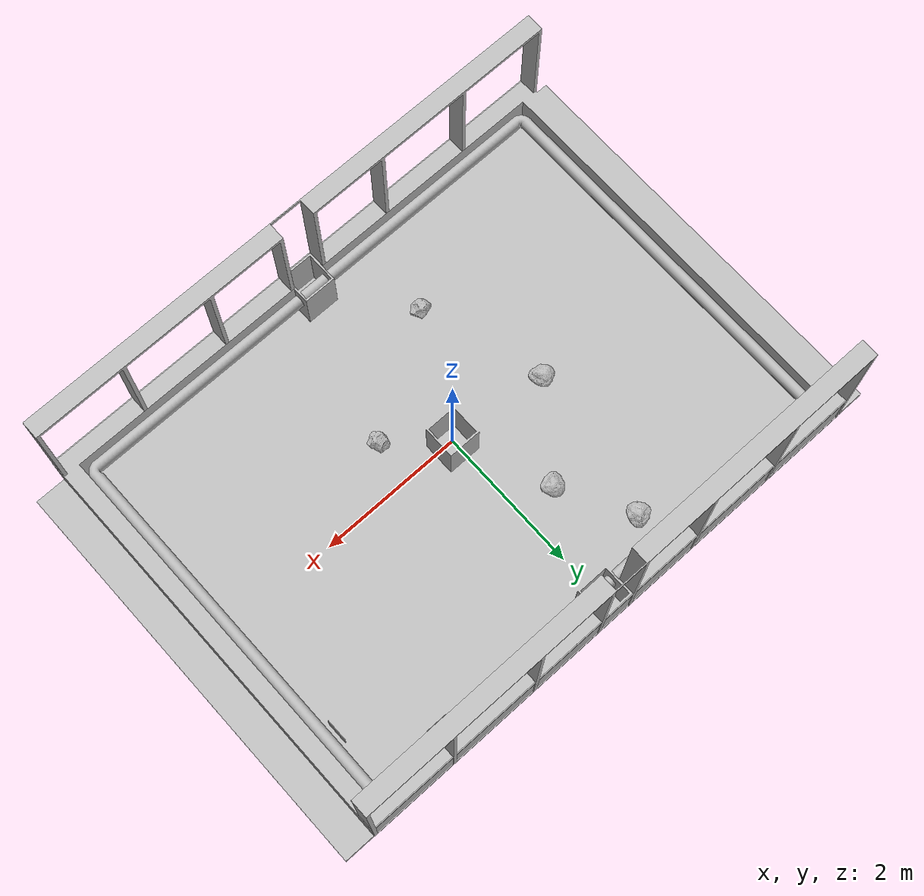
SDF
<sdf version="1.7">
 <world name="default">
  <light name="sun" type="directional">
   <pose>0 0 10 0 0 0</pose>
   <diffuse>0.4 0.4 0.4 1</diffuse>
   <specular>0.1 0.1 0.1 1</specular>
   <attenuation>
    <range>500</range>
    <constant>0.8</constant>
    <linear>0.02</linear>
    <quadratic>0.001</quadratic>
   </attenuation>
   <direction>-0.5 0.1 -0.9</direction>
  </light>
  <scene>
   <ambient>0.4 0.4 0.4 1</ambient>
   <background>18 18 18 255</background>
   <shadows>1</shadows>
   <grid>false</grid>
   <origin_visual>false</origin_visual>
  </scene>
  <physics type="ode">
   <max_step_size>0.001</max_step_size>
   <real_time_factor>1</real_time_factor>
   <real_time_update_rate>1000</real_time_update_rate>
  </physics>
  <gravity>0 0 -9.81</gravity>
  <model name="artemis_arena_pipe">
   <pose>0 0 1.248 0 0 0</pose>
   <static>1</static>
   <link name="link">
    <visual name="artemis_arena_pipe">
     <geometry>
      <mesh><uri>model://artemis_arena/arena_pipe/arena_pipe.dae</uri><scale>1 1 1</scale></mesh>
     </geometry>
    </visual>
    <collision name="artemis_arena_pipe_collision">
     <geometry>
      <mesh><uri>model://artemis_arena/arena_pipe/arena_pipe.stl</uri><scale>1 1 1</scale></mesh>
     </geometry>
     <surface><friction><ode><mu>0.8</mu><mu2>0.8</mu2></ode></friction></surface>
    </collision>
   </link>
  </model>
  <model name="artemis_arena_walls">
   <pose>0 0 1.248 0 0 0</pose>
   <static>1</static>
   <link name="link">
    <visual name="artemis_arena_walls">
     <geometry>
      <mesh><uri>model://artemis_arena/arena_walls/arena_walls.dae</uri><scale>1 1 1</scale></mesh>
     </geometry>
    </visual>
    <collision name="artemis_arena_walls_collision">
     <geometry>
      <mesh><uri>model://artemis_arena/arena_walls/arena_walls.stl</uri><scale>1 1 1</scale></mesh>
     </geometry>
     <surface><friction><ode><mu>0.8</mu><mu2>0.8</mu2></ode></friction></surface>
    </collision>
   </link>
  </model>
  <model name="artemis_arena_window_frames">
   <pose>0 0 1.248 0 0 0</pose>
   <static>1</static>
   <link name="link">
    <visual name="artemis_arena_window_frames">
     <geometry>
      <mesh><uri>model://artemis_arena/arena_window_frames/arena_window_frames.dae</uri><scale>1 1 1</scale></mesh>
     </geometry>
    </visual>
    <collision name="artemis_arena_window_frames_collision">
     <geometry>
      <mesh><uri>model://artemis_arena/arena_window_frames/arena_window_frames.stl</uri><scale>1 1 1</scale></mesh>
     </geometry>
     <surface><friction><ode><mu>0.8</mu><mu2>0.8</mu2></ode></friction></surface>
    </collision>
   </link>
  </model>
  <model name="rock_rough">
   <pose>0.737889 -0.583795 0.05 0 0 -2.17367</pose>
   <self_collide>1</self_collide>
   <static>0</static>
   <link name="link">
    <inertial><mass>0.5</mass><inertia><ixx>0.1</ixx><iyy>0.1</iyy><izz>0.1</izz></inertia></inertial>
    <visual name="rock_rough">
     <geometry><mesh><uri>model://rock_rough/rock_rough.dae</uri><scale>1 1 1</scale></mesh></geometry>
    </visual>
    <collision name="rock_rough_collision">
     <geometry><mesh><uri>model://rock_rough/rock_rough.stl</uri><scale>1 1 1</scale></mesh></geometry>
     <surface><friction><ode><mu>0.2</mu><mu2>0.2</mu2></ode></friction></surface>
    </collision>
    <velocity_decay><linear>0.3</linear><angular>0.3</angular></velocity_decay>
   </link>
  </model>
  <model name="rock_rough_2">
   <pose>-0.827122 -1.5 0.05 0 0 -0.62</pose>
   <self_collide>1</self_collide>
   <static>0</static>
   <link name="link">
    <inertial><mass>0.5</mass><inertia><ixx>0.1</ixx><iyy>0.1</iyy><izz>0.1</izz></inertia></inertial>
    <visual name="rock_rough_2">
     <geometry><mesh><uri>model://rock_rough/rock_rough.dae</uri><scale>1 1 1</scale></mesh></geometry>
    </visual>
    <collision name="rock_rough_2_collision">
     <geometry><mesh><uri>model://rock_rough/rock_rough.stl</uri><scale>1 1 1</scale></mesh></geometry>
     <surface><friction><ode><mu>0.2</mu><mu2>0.2</mu2></ode></friction></surface>
    </collision>
    <velocity_decay><linear>0.3</linear><angular>0.3</angular></velocity_decay>
   </link>
  </model>
  <model name="rock_round">
   <pose>-1.38662 0.114088 0.05 0 0 0.846674</pose>
   <self_collide>1</self_collide>
   <static>0</static>
   <link name="link">
    <inertial><mass>0.5</mass><inertia><ixx>0.1</ixx><iyy>0.1</iyy><izz>0.1</izz></inertia></inertial>
    <visual name="rock_round">
     <geometry><mesh><uri>model://rock_round/rock_round.dae</uri><scale>1 1 1</scale></mesh></geometry>
    </visual>
    <collision name="rock_round_collision">
     <geometry><mesh><uri>model://rock_round/rock_round.stl</uri><scale>1 1 1</scale></mesh></geometry>
     <surface><friction><ode><mu>0.2</mu><mu2>0.2</mu2></ode></friction></surface>
    </collision>
    <velocity_decay><linear>0.3</linear><angular>0.3</angular></velocity_decay>
   </link>
  </model>
  <model name="rock_round_2">
   <pose>-0.532452 1.23569 0.05 0 0 -0.80</pose>
   <self_collide>1</self_collide>
   <static>0</static>
   <link name="link">
    <inertial><mass>0.5</mass><inertia><ixx>0.1</ixx><iyy>0.1</iyy><izz>0.1</izz></inertia></inertial>
    <visual name="rock_round_2">
     <geometry><mesh><uri>model://rock_round/rock_round.dae</uri><scale>1 1 1</scale></mesh></geometry>
    </visual>
    <collision name="rock_round_2_collision">
     <geometry><mesh><uri>model://rock_round/rock_round.stl</uri><scale>1 1 1</scale></mesh></geometry>
     <surface><friction><ode><mu>0.2</mu><mu2>0.2</mu2></ode></friction></surface>
    </collision>
    <velocity_decay><linear>0.3</linear><angular>0.3</angular></velocity_decay>
   </link>
  </model>
  <model name="rock_round_3">
   <pose>-1.05148 2.2 0.05 0 0 2.55</pose>
   <self_collide>1</self_collide>
   <static>0</static>
   <link name="link">
    <inertial><mass>0.5</mass><inertia><ixx>0.1</ixx><iyy>0.1</iyy><izz>0.1</izz></inertia></inertial>
    <visual name="rock_round_3">
     <geometry><mesh><uri>model://rock_round/rock_round.dae</uri><scale>1 1 1</scale></mesh></geometry>
    </visual>
    <collision name="rock_round_3_collision">
     <geometry><mesh><uri>model://rock_round/rock_round.stl</uri><scale>1 1 1</scale></mesh></geometry>
     <surface><friction><ode><mu>0.2</mu><mu2>0.2</mu2></ode></friction></surface>
    </collision>
    <velocity_decay><linear>0.3</linear><angular>0.3</angular></velocity_decay>
   </link>
  </model>
  <model name="tag_36_11_00007">
   <pose>3.4 1.8 0.4 0 -1.58 0</pose>
   <static>1</static>
   <link name="link">
    <visual name="tag_36_11_00007">
     <geometry><box><size>0.3 0.3 0.005</size></box></geometry>
     <material>
      <script>
       <uri>model://apriltags/tag_36_11_00007/materials/scripts</uri>
       <uri>model://apriltags/tag_36_11_00007/materials/textures</uri>
       <name>tag_36_11_00007</name>
      </script>
     </material>
    </visual>
    <collision name="tag_36_11_00007_collision">
     <geometry><box><size>0.3 0.3 0.005</size></box></geometry>
    </collision>
   </link>
  </model>
  <model name="tag_36_11_00011">
   <pose>2.5 2.5 0.4 1.58 0 0</pose>
   <static>1</static>
   <link name="link">
    <visual name="tag_36_11_00011">
     <geometry><box><size>0.3 0.3 0.005</size></box></geometry>
     <material>
      <script>
       <uri>model://apriltags/tag_36_11_00011/materials/scripts</uri>
       <uri>model://apriltags/tag_36_11_00011/materials/textures</uri>
       <name>tag_36_11_00011</name>
      </script>
     </material>
    </visual>
    <collision name="tag_36_11_00011_collision">
     <geometry><box><size>0.3 0.3 0.005</size></box></geometry>
    </collision>
   </link>
  </model>
 </world>
</sdf>
